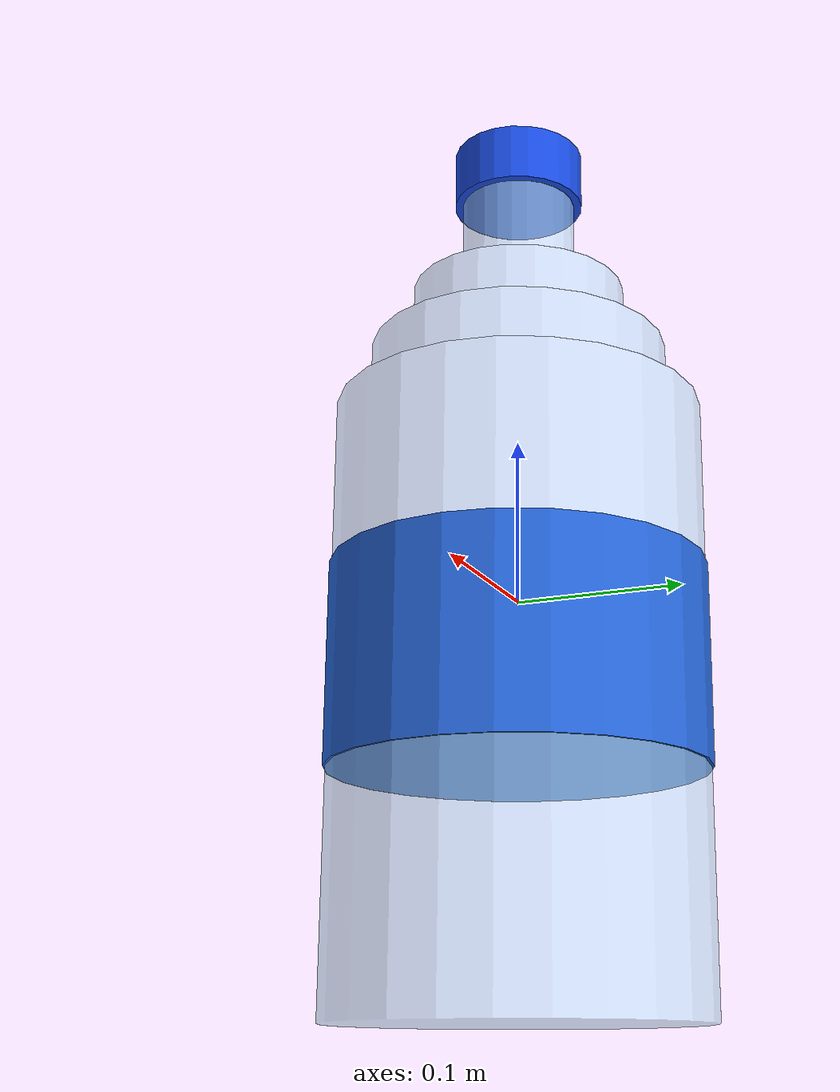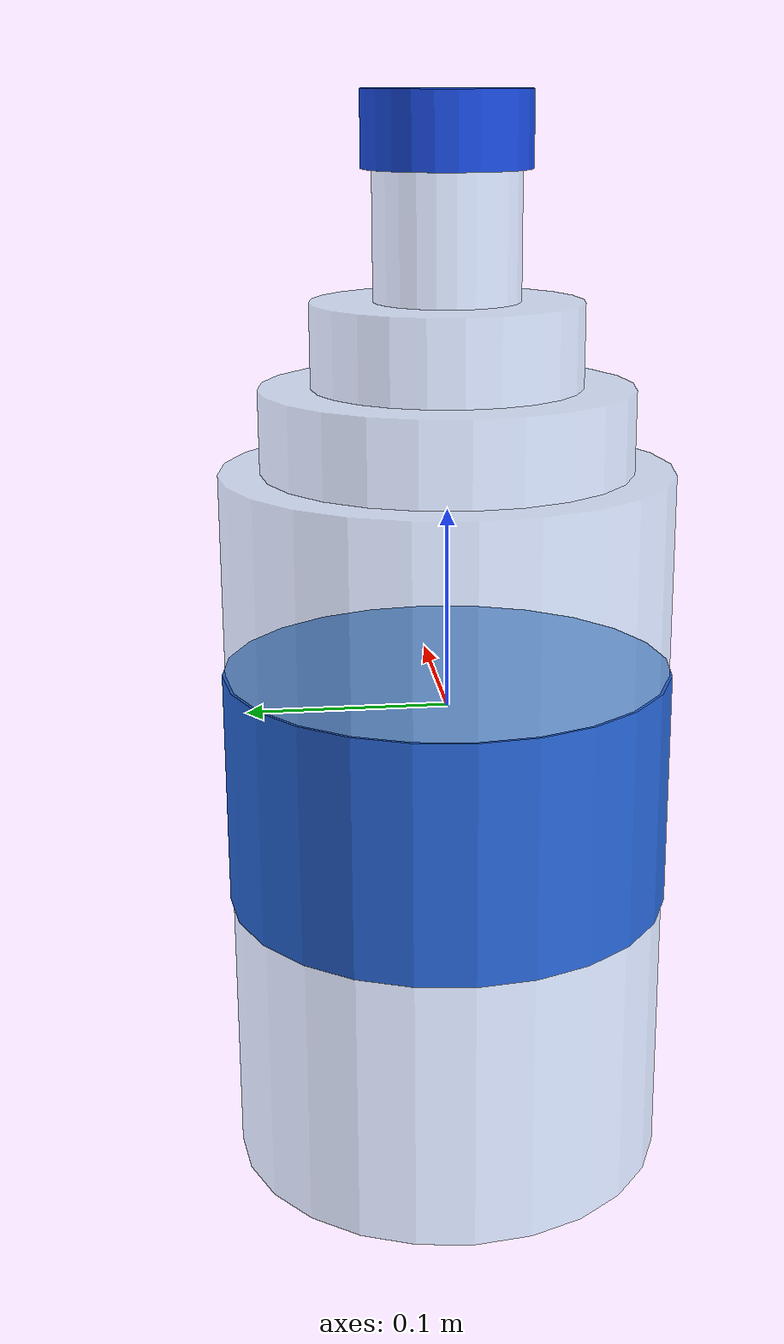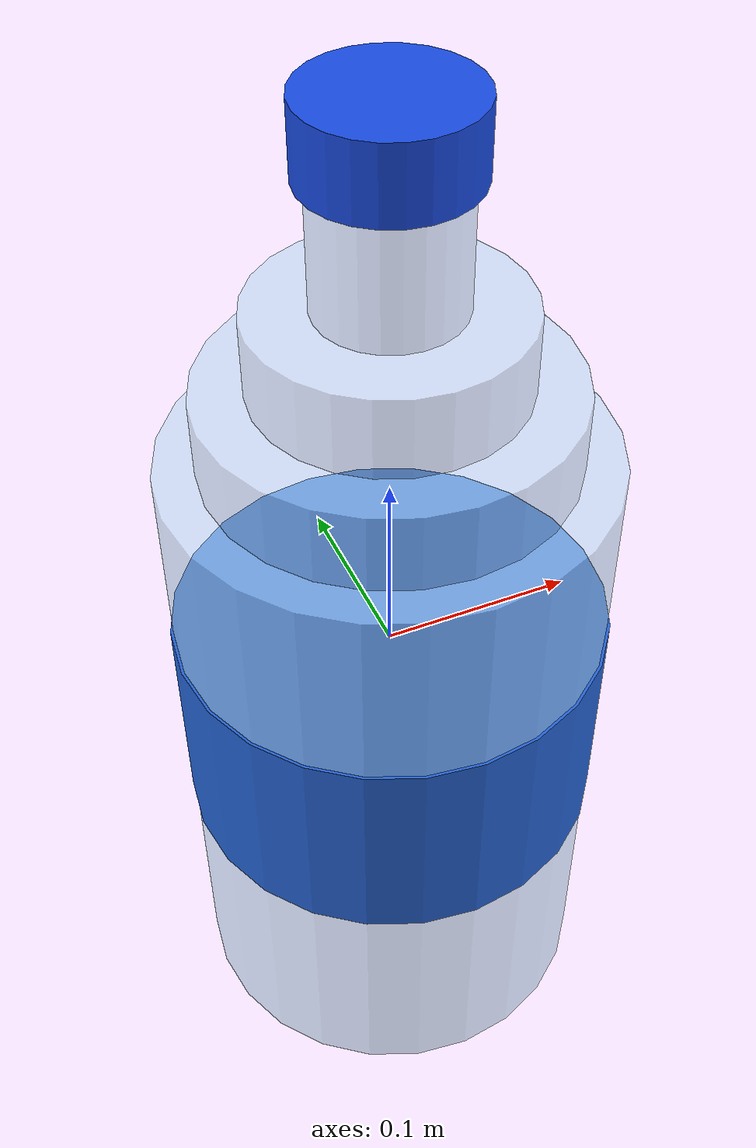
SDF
<?xml version="1.0"?>
<sdf version="1.9">
  <model name="plastic_bottle">
    <link name="link">
      <gravity>false</gravity>
      <inertial>
        <mass>0.5</mass>
        <inertia><ixx>0.012</ixx><iyy>0.012</iyy><izz>0.003</izz></inertia>
      </inertial>
      <!-- translucent body -->
      <visual name="body">
        <pose>0 0 -0.06 0 0 0</pose>
        <geometry><cylinder><radius>0.11</radius><length>0.36</length></cylinder></geometry>
        <material><ambient>0.6 0.75 0.85 1</ambient><diffuse>0.75 0.9 1.0 1</diffuse><specular>0.9 0.9 0.9 1</specular></material>
        <transparency>0.45</transparency>
      </visual>
      <!-- printed label band -->
      <visual name="label">
        <pose>0 0 -0.04 0 0 0</pose>
        <geometry><cylinder><radius>0.1115</radius><length>0.12</length></cylinder></geometry>
        <material><ambient>0.1 0.3 0.7 1</ambient><diffuse>0.15 0.4 0.85 1</diffuse></material>
      </visual>
      <!-- tapering shoulder -->
      <visual name="shoulder1">
        <pose>0 0 0.14 0 0 0</pose>
        <geometry><cylinder><radius>0.09</radius><length>0.04</length></cylinder></geometry>
        <material><ambient>0.6 0.75 0.85 1</ambient><diffuse>0.75 0.9 1.0 1</diffuse></material>
        <transparency>0.45</transparency>
      </visual>
      <visual name="shoulder2">
        <pose>0 0 0.18 0 0 0</pose>
        <geometry><cylinder><radius>0.065</radius><length>0.04</length></cylinder></geometry>
        <material><ambient>0.6 0.75 0.85 1</ambient><diffuse>0.75 0.9 1.0 1</diffuse></material>
        <transparency>0.45</transparency>
      </visual>
      <visual name="neck">
        <pose>0 0 0.23 0 0 0</pose>
        <geometry><cylinder><radius>0.035</radius><length>0.06</length></cylinder></geometry>
        <material><ambient>0.6 0.75 0.85 1</ambient><diffuse>0.75 0.9 1.0 1</diffuse></material>
        <transparency>0.45</transparency>
      </visual>
      <visual name="cap">
        <pose>0 0 0.2775 0 0 0</pose>
        <geometry><cylinder><radius>0.04</radius><length>0.035</length></cylinder></geometry>
        <material><ambient>0.05 0.2 0.6 1</ambient><diffuse>0.1 0.3 0.9 1</diffuse></material>
      </visual>
    </link>
  </model>
</sdf>
